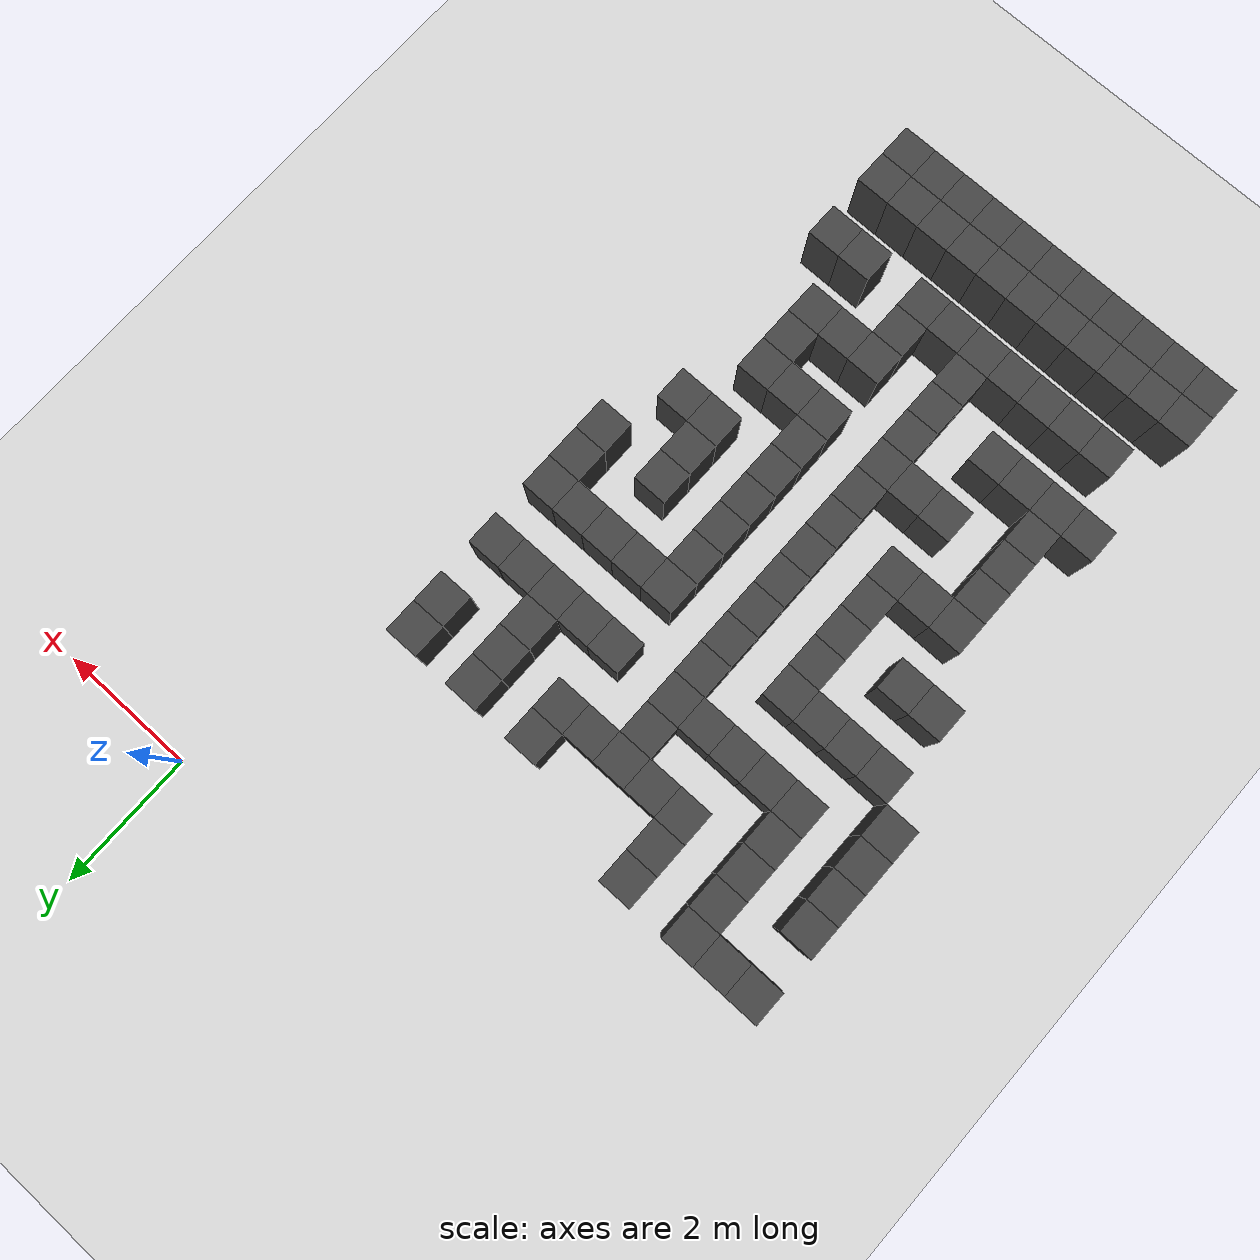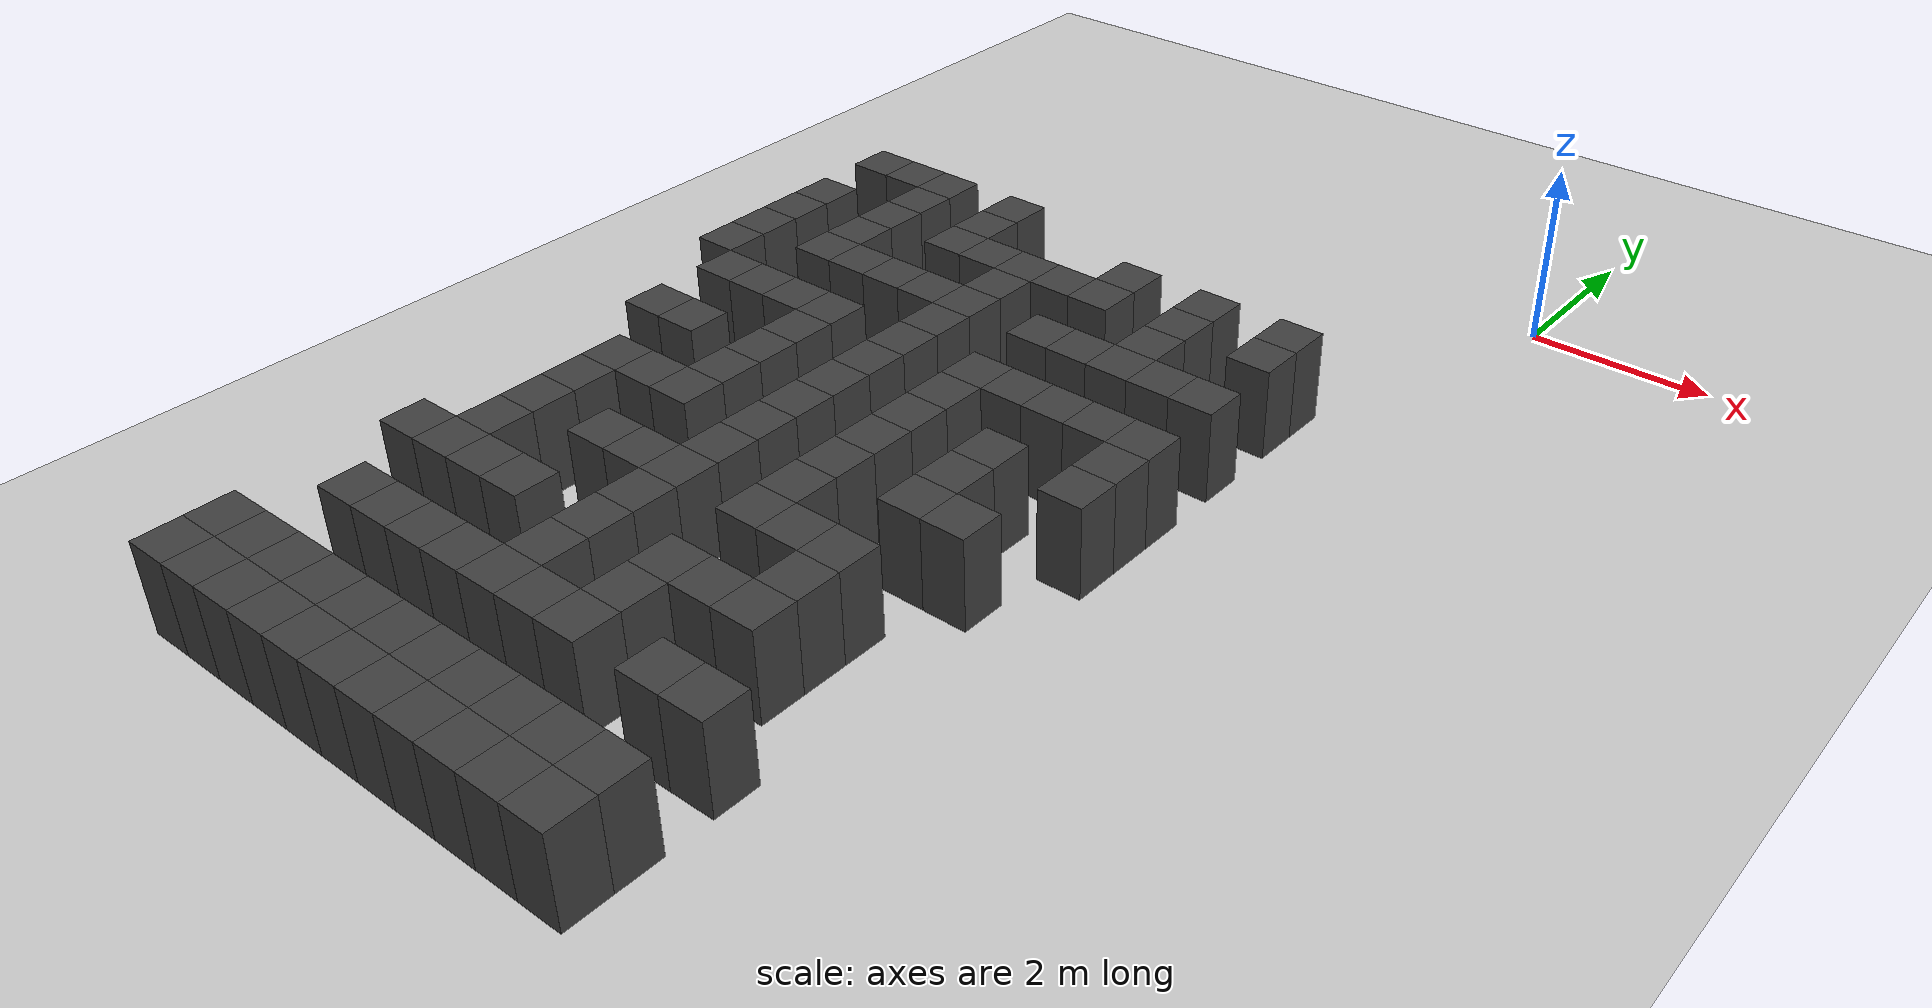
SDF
<sdf version="1.7">
 <world name="map_19815">
  <model name="ground_plane">
   <static>true</static>
   <link name="link">
    <collision name="collision">
     <geometry><plane><normal>0 0 1</normal><size>200 200</size></plane></geometry>
    </collision>
    <visual name="visual">
     <geometry><plane><normal>0 0 1</normal><size>200 200</size></plane></geometry>
     <material><ambient>0.8 0.8 0.8 1</ambient><diffuse>0.8 0.8 0.8 1</diffuse></material>
    </visual>
   </link>
  </model>
  <model name="maze_environment">
   <static>true</static>
   <link name="wall_788">
    <pose>-7.250 -2.750 0.500 0 0 0</pose>
    <collision name="col"><geometry><box><size>0.5 0.5 1.0</size></box></geometry></collision>
    <visual name="vis">
     <geometry><box><size>0.5 0.5 1.0</size></box></geometry>
     <material><ambient>0.15 0.15 0.15 1</ambient><diffuse>0.25 0.25 0.25 1</diffuse></material>
    </visual>
   </link>
   <link name="wall_789">
    <pose>-6.750 -2.750 0.500 0 0 0</pose>
    <collision name="col"><geometry><box><size>0.5 0.5 1.0</size></box></geometry></collision>
    <visual name="vis">
     <geometry><box><size>0.5 0.5 1.0</size></box></geometry>
     <material><ambient>0.15 0.15 0.15 1</ambient><diffuse>0.25 0.25 0.25 1</diffuse></material>
    </visual>
   </link>
   <link name="wall_790">
    <pose>-6.250 -2.750 0.500 0 0 0</pose>
    <collision name="col"><geometry><box><size>0.5 0.5 1.0</size></box></geometry></collision>
    <visual name="vis">
     <geometry><box><size>0.5 0.5 1.0</size></box></geometry>
     <material><ambient>0.15 0.15 0.15 1</ambient><diffuse>0.25 0.25 0.25 1</diffuse></material>
    </visual>
   </link>
   <link name="wall_791">
    <pose>-5.250 -2.750 0.500 0 0 0</pose>
    <collision name="col"><geometry><box><size>0.5 0.5 1.0</size></box></geometry></collision>
    <visual name="vis">
     <geometry><box><size>0.5 0.5 1.0</size></box></geometry>
     <material><ambient>0.15 0.15 0.15 1</ambient><diffuse>0.25 0.25 0.25 1</diffuse></material>
    </visual>
   </link>
   <link name="wall_822">
    <pose>-6.250 -3.250 0.500 0 0 0</pose>
    <collision name="col"><geometry><box><size>0.5 0.5 1.0</size></box></geometry></collision>
    <visual name="vis">
     <geometry><box><size>0.5 0.5 1.0</size></box></geometry>
     <material><ambient>0.15 0.15 0.15 1</ambient><diffuse>0.25 0.25 0.25 1</diffuse></material>
    </visual>
   </link>
   <link name="wall_823">
    <pose>-5.250 -3.250 0.500 0 0 0</pose>
    <collision name="col"><geometry><box><size>0.5 0.5 1.0</size></box></geometry></collision>
    <visual name="vis">
     <geometry><box><size>0.5 0.5 1.0</size></box></geometry>
     <material><ambient>0.15 0.15 0.15 1</ambient><diffuse>0.25 0.25 0.25 1</diffuse></material>
    </visual>
   </link>
   <link name="wall_824">
    <pose>-3.250 -3.250 0.500 0 0 0</pose>
    <collision name="col"><geometry><box><size>0.5 0.5 1.0</size></box></geometry></collision>
    <visual name="vis">
     <geometry><box><size>0.5 0.5 1.0</size></box></geometry>
     <material><ambient>0.15 0.15 0.15 1</ambient><diffuse>0.25 0.25 0.25 1</diffuse></material>
    </visual>
   </link>
   <link name="wall_825">
    <pose>-2.250 -3.250 0.500 0 0 0</pose>
    <collision name="col"><geometry><box><size>0.5 0.5 1.0</size></box></geometry></collision>
    <visual name="vis">
     <geometry><box><size>0.5 0.5 1.0</size></box></geometry>
     <material><ambient>0.15 0.15 0.15 1</ambient><diffuse>0.25 0.25 0.25 1</diffuse></material>
    </visual>
   </link>
   <link name="wall_826">
    <pose>-1.250 -3.250 0.500 0 0 0</pose>
    <collision name="col"><geometry><box><size>0.5 0.5 1.0</size></box></geometry></collision>
    <visual name="vis">
     <geometry><box><size>0.5 0.5 1.0</size></box></geometry>
     <material><ambient>0.15 0.15 0.15 1</ambient><diffuse>0.25 0.25 0.25 1</diffuse></material>
    </visual>
   </link>
   <link name="wall_843">
    <pose>-7.250 -3.750 0.500 0 0 0</pose>
    <collision name="col"><geometry><box><size>0.5 0.5 1.0</size></box></geometry></collision>
    <visual name="vis">
     <geometry><box><size>0.5 0.5 1.0</size></box></geometry>
     <material><ambient>0.15 0.15 0.15 1</ambient><diffuse>0.25 0.25 0.25 1</diffuse></material>
    </visual>
   </link>
   <link name="wall_844">
    <pose>-6.250 -3.750 0.500 0 0 0</pose>
    <collision name="col"><geometry><box><size>0.5 0.5 1.0</size></box></geometry></collision>
    <visual name="vis">
     <geometry><box><size>0.5 0.5 1.0</size></box></geometry>
     <material><ambient>0.15 0.15 0.15 1</ambient><diffuse>0.25 0.25 0.25 1</diffuse></material>
    </visual>
   </link>
   <link name="wall_845">
    <pose>-5.250 -3.750 0.500 0 0 0</pose>
    <collision name="col"><geometry><box><size>0.5 0.5 1.0</size></box></geometry></collision>
    <visual name="vis">
     <geometry><box><size>0.5 0.5 1.0</size></box></geometry>
     <material><ambient>0.15 0.15 0.15 1</ambient><diffuse>0.25 0.25 0.25 1</diffuse></material>
    </visual>
   </link>
   <link name="wall_846">
    <pose>-4.750 -3.750 0.500 0 0 0</pose>
    <collision name="col"><geometry><box><size>0.5 0.5 1.0</size></box></geometry></collision>
    <visual name="vis">
     <geometry><box><size>0.5 0.5 1.0</size></box></geometry>
     <material><ambient>0.15 0.15 0.15 1</ambient><diffuse>0.25 0.25 0.25 1</diffuse></material>
    </visual>
   </link>
   <link name="wall_847">
    <pose>-4.250 -3.750 0.500 0 0 0</pose>
    <collision name="col"><geometry><box><size>0.5 0.5 1.0</size></box></geometry></collision>
    <visual name="vis">
     <geometry><box><size>0.5 0.5 1.0</size></box></geometry>
     <material><ambient>0.15 0.15 0.15 1</ambient><diffuse>0.25 0.25 0.25 1</diffuse></material>
    </visual>
   </link>
   <link name="wall_848">
    <pose>-3.750 -3.750 0.500 0 0 0</pose>
    <collision name="col"><geometry><box><size>0.5 0.5 1.0</size></box></geometry></collision>
    <visual name="vis">
     <geometry><box><size>0.5 0.5 1.0</size></box></geometry>
     <material><ambient>0.15 0.15 0.15 1</ambient><diffuse>0.25 0.25 0.25 1</diffuse></material>
    </visual>
   </link>
   <link name="wall_849">
    <pose>-3.250 -3.750 0.500 0 0 0</pose>
    <collision name="col"><geometry><box><size>0.5 0.5 1.0</size></box></geometry></collision>
    <visual name="vis">
     <geometry><box><size>0.5 0.5 1.0</size></box></geometry>
     <material><ambient>0.15 0.15 0.15 1</ambient><diffuse>0.25 0.25 0.25 1</diffuse></material>
    </visual>
   </link>
   <link name="wall_850">
    <pose>-2.250 -3.750 0.500 0 0 0</pose>
    <collision name="col"><geometry><box><size>0.5 0.5 1.0</size></box></geometry></collision>
    <visual name="vis">
     <geometry><box><size>0.5 0.5 1.0</size></box></geometry>
     <material><ambient>0.15 0.15 0.15 1</ambient><diffuse>0.25 0.25 0.25 1</diffuse></material>
    </visual>
   </link>
   <link name="wall_851">
    <pose>-1.250 -3.750 0.500 0 0 0</pose>
    <collision name="col"><geometry><box><size>0.5 0.5 1.0</size></box></geometry></collision>
    <visual name="vis">
     <geometry><box><size>0.5 0.5 1.0</size></box></geometry>
     <material><ambient>0.15 0.15 0.15 1</ambient><diffuse>0.25 0.25 0.25 1</diffuse></material>
    </visual>
   </link>
   <link name="wall_874">
    <pose>-7.250 -4.250 0.500 0 0 0</pose>
    <collision name="col"><geometry><box><size>0.5 0.5 1.0</size></box></geometry></collision>
    <visual name="vis">
     <geometry><box><size>0.5 0.5 1.0</size></box></geometry>
     <material><ambient>0.15 0.15 0.15 1</ambient><diffuse>0.25 0.25 0.25 1</diffuse></material>
    </visual>
   </link>
   <link name="wall_875">
    <pose>-6.250 -4.250 0.500 0 0 0</pose>
    <collision name="col"><geometry><box><size>0.5 0.5 1.0</size></box></geometry></collision>
    <visual name="vis">
     <geometry><box><size>0.5 0.5 1.0</size></box></geometry>
     <material><ambient>0.15 0.15 0.15 1</ambient><diffuse>0.25 0.25 0.25 1</diffuse></material>
    </visual>
   </link>
   <link name="wall_876">
    <pose>-4.250 -4.250 0.500 0 0 0</pose>
    <collision name="col"><geometry><box><size>0.5 0.5 1.0</size></box></geometry></collision>
    <visual name="vis">
     <geometry><box><size>0.5 0.5 1.0</size></box></geometry>
     <material><ambient>0.15 0.15 0.15 1</ambient><diffuse>0.25 0.25 0.25 1</diffuse></material>
    </visual>
   </link>
   <link name="wall_877">
    <pose>-2.250 -4.250 0.500 0 0 0</pose>
    <collision name="col"><geometry><box><size>0.5 0.5 1.0</size></box></geometry></collision>
    <visual name="vis">
     <geometry><box><size>0.5 0.5 1.0</size></box></geometry>
     <material><ambient>0.15 0.15 0.15 1</ambient><diffuse>0.25 0.25 0.25 1</diffuse></material>
    </visual>
   </link>
   <link name="wall_892">
    <pose>-7.250 -4.750 0.500 0 0 0</pose>
    <collision name="col"><geometry><box><size>0.5 0.5 1.0</size></box></geometry></collision>
    <visual name="vis">
     <geometry><box><size>0.5 0.5 1.0</size></box></geometry>
     <material><ambient>0.15 0.15 0.15 1</ambient><diffuse>0.25 0.25 0.25 1</diffuse></material>
    </visual>
   </link>
   <link name="wall_893">
    <pose>-6.250 -4.750 0.500 0 0 0</pose>
    <collision name="col"><geometry><box><size>0.5 0.5 1.0</size></box></geometry></collision>
    <visual name="vis">
     <geometry><box><size>0.5 0.5 1.0</size></box></geometry>
     <material><ambient>0.15 0.15 0.15 1</ambient><diffuse>0.25 0.25 0.25 1</diffuse></material>
    </visual>
   </link>
   <link name="wall_894">
    <pose>-5.750 -4.750 0.500 0 0 0</pose>
    <collision name="col"><geometry><box><size>0.5 0.5 1.0</size></box></geometry></collision>
    <visual name="vis">
     <geometry><box><size>0.5 0.5 1.0</size></box></geometry>
     <material><ambient>0.15 0.15 0.15 1</ambient><diffuse>0.25 0.25 0.25 1</diffuse></material>
    </visual>
   </link>
   <link name="wall_895">
    <pose>-5.250 -4.750 0.500 0 0 0</pose>
    <collision name="col"><geometry><box><size>0.5 0.5 1.0</size></box></geometry></collision>
    <visual name="vis">
     <geometry><box><size>0.5 0.5 1.0</size></box></geometry>
     <material><ambient>0.15 0.15 0.15 1</ambient><diffuse>0.25 0.25 0.25 1</diffuse></material>
    </visual>
   </link>
   <link name="wall_896">
    <pose>-4.750 -4.750 0.500 0 0 0</pose>
    <collision name="col"><geometry><box><size>0.5 0.5 1.0</size></box></geometry></collision>
    <visual name="vis">
     <geometry><box><size>0.5 0.5 1.0</size></box></geometry>
     <material><ambient>0.15 0.15 0.15 1</ambient><diffuse>0.25 0.25 0.25 1</diffuse></material>
    </visual>
   </link>
   <link name="wall_897">
    <pose>-4.250 -4.750 0.500 0 0 0</pose>
    <collision name="col"><geometry><box><size>0.5 0.5 1.0</size></box></geometry></collision>
    <visual name="vis">
     <geometry><box><size>0.5 0.5 1.0</size></box></geometry>
     <material><ambient>0.15 0.15 0.15 1</ambient><diffuse>0.25 0.25 0.25 1</diffuse></material>
    </visual>
   </link>
   <link name="wall_898">
    <pose>-3.250 -4.750 0.500 0 0 0</pose>
    <collision name="col"><geometry><box><size>0.5 0.5 1.0</size></box></geometry></collision>
    <visual name="vis">
     <geometry><box><size>0.5 0.5 1.0</size></box></geometry>
     <material><ambient>0.15 0.15 0.15 1</ambient><diffuse>0.25 0.25 0.25 1</diffuse></material>
    </visual>
   </link>
   <link name="wall_899">
    <pose>-2.750 -4.750 0.500 0 0 0</pose>
    <collision name="col"><geometry><box><size>0.5 0.5 1.0</size></box></geometry></collision>
    <visual name="vis">
     <geometry><box><size>0.5 0.5 1.0</size></box></geometry>
     <material><ambient>0.15 0.15 0.15 1</ambient><diffuse>0.25 0.25 0.25 1</diffuse></material>
    </visual>
   </link>
   <link name="wall_900">
    <pose>-2.250 -4.750 0.500 0 0 0</pose>
    <collision name="col"><geometry><box><size>0.5 0.5 1.0</size></box></geometry></collision>
    <visual name="vis">
     <geometry><box><size>0.5 0.5 1.0</size></box></geometry>
     <material><ambient>0.15 0.15 0.15 1</ambient><diffuse>0.25 0.25 0.25 1</diffuse></material>
    </visual>
   </link>
   <link name="wall_901">
    <pose>-1.750 -4.750 0.500 0 0 0</pose>
    <collision name="col"><geometry><box><size>0.5 0.5 1.0</size></box></geometry></collision>
    <visual name="vis">
     <geometry><box><size>0.5 0.5 1.0</size></box></geometry>
     <material><ambient>0.15 0.15 0.15 1</ambient><diffuse>0.25 0.25 0.25 1</diffuse></material>
    </visual>
   </link>
   <link name="wall_902">
    <pose>-1.250 -4.750 0.500 0 0 0</pose>
    <collision name="col"><geometry><box><size>0.5 0.5 1.0</size></box></geometry></collision>
    <visual name="vis">
     <geometry><box><size>0.5 0.5 1.0</size></box></geometry>
     <material><ambient>0.15 0.15 0.15 1</ambient><diffuse>0.25 0.25 0.25 1</diffuse></material>
    </visual>
   </link>
   <link name="wall_927">
    <pose>-7.250 -5.250 0.500 0 0 0</pose>
    <collision name="col"><geometry><box><size>0.5 0.5 1.0</size></box></geometry></collision>
    <visual name="vis">
     <geometry><box><size>0.5 0.5 1.0</size></box></geometry>
     <material><ambient>0.15 0.15 0.15 1</ambient><diffuse>0.25 0.25 0.25 1</diffuse></material>
    </visual>
   </link>
   <link name="wall_928">
    <pose>-4.250 -5.250 0.500 0 0 0</pose>
    <collision name="col"><geometry><box><size>0.5 0.5 1.0</size></box></geometry></collision>
    <visual name="vis">
     <geometry><box><size>0.5 0.5 1.0</size></box></geometry>
     <material><ambient>0.15 0.15 0.15 1</ambient><diffuse>0.25 0.25 0.25 1</diffuse></material>
    </visual>
   </link>
   <link name="wall_944">
    <pose>-6.750 -5.750 0.500 0 0 0</pose>
    <collision name="col"><geometry><box><size>0.5 0.5 1.0</size></box></geometry></collision>
    <visual name="vis">
     <geometry><box><size>0.5 0.5 1.0</size></box></geometry>
     <material><ambient>0.15 0.15 0.15 1</ambient><diffuse>0.25 0.25 0.25 1</diffuse></material>
    </visual>
   </link>
   <link name="wall_945">
    <pose>-6.250 -5.750 0.500 0 0 0</pose>
    <collision name="col"><geometry><box><size>0.5 0.5 1.0</size></box></geometry></collision>
    <visual name="vis">
     <geometry><box><size>0.5 0.5 1.0</size></box></geometry>
     <material><ambient>0.15 0.15 0.15 1</ambient><diffuse>0.25 0.25 0.25 1</diffuse></material>
    </visual>
   </link>
   <link name="wall_946">
    <pose>-5.750 -5.750 0.500 0 0 0</pose>
    <collision name="col"><geometry><box><size>0.5 0.5 1.0</size></box></geometry></collision>
    <visual name="vis">
     <geometry><box><size>0.5 0.5 1.0</size></box></geometry>
     <material><ambient>0.15 0.15 0.15 1</ambient><diffuse>0.25 0.25 0.25 1</diffuse></material>
    </visual>
   </link>
   <link name="wall_947">
    <pose>-5.250 -5.750 0.500 0 0 0</pose>
    <collision name="col"><geometry><box><size>0.5 0.5 1.0</size></box></geometry></collision>
    <visual name="vis">
     <geometry><box><size>0.5 0.5 1.0</size></box></geometry>
     <material><ambient>0.15 0.15 0.15 1</ambient><diffuse>0.25 0.25 0.25 1</diffuse></material>
    </visual>
   </link>
   <link name="wall_948">
    <pose>-4.250 -5.750 0.500 0 0 0</pose>
    <collision name="col"><geometry><box><size>0.5 0.5 1.0</size></box></geometry></collision>
    <visual name="vis">
     <geometry><box><size>0.5 0.5 1.0</size></box></geometry>
     <material><ambient>0.15 0.15 0.15 1</ambient><diffuse>0.25 0.25 0.25 1</diffuse></material>
    </visual>
   </link>
   <link name="wall_949">
    <pose>-3.250 -5.750 0.500 0 0 0</pose>
    <collision name="col"><geometry><box><size>0.5 0.5 1.0</size></box></geometry></collision>
    <visual name="vis">
     <geometry><box><size>0.5 0.5 1.0</size></box></geometry>
     <material><ambient>0.15 0.15 0.15 1</ambient><diffuse>0.25 0.25 0.25 1</diffuse></material>
    </visual>
   </link>
   <link name="wall_950">
    <pose>-2.750 -5.750 0.500 0 0 0</pose>
    <collision name="col"><geometry><box><size>0.5 0.5 1.0</size></box></geometry></collision>
    <visual name="vis">
     <geometry><box><size>0.5 0.5 1.0</size></box></geometry>
     <material><ambient>0.15 0.15 0.15 1</ambient><diffuse>0.25 0.25 0.25 1</diffuse></material>
    </visual>
   </link>
   <link name="wall_951">
    <pose>-2.250 -5.750 0.500 0 0 0</pose>
    <collision name="col"><geometry><box><size>0.5 0.5 1.0</size></box></geometry></collision>
    <visual name="vis">
     <geometry><box><size>0.5 0.5 1.0</size></box></geometry>
     <material><ambient>0.15 0.15 0.15 1</ambient><diffuse>0.25 0.25 0.25 1</diffuse></material>
    </visual>
   </link>
   <link name="wall_952">
    <pose>-1.750 -5.750 0.500 0 0 0</pose>
    <collision name="col"><geometry><box><size>0.5 0.5 1.0</size></box></geometry></collision>
    <visual name="vis">
     <geometry><box><size>0.5 0.5 1.0</size></box></geometry>
     <material><ambient>0.15 0.15 0.15 1</ambient><diffuse>0.25 0.25 0.25 1</diffuse></material>
    </visual>
   </link>
   <link name="wall_953">
    <pose>-1.250 -5.750 0.500 0 0 0</pose>
    <collision name="col"><geometry><box><size>0.5 0.5 1.0</size></box></geometry></collision>
    <visual name="vis">
     <geometry><box><size>0.5 0.5 1.0</size></box></geometry>
     <material><ambient>0.15 0.15 0.15 1</ambient><diffuse>0.25 0.25 0.25 1</diffuse></material>
    </visual>
   </link>
   <link name="wall_976">
    <pose>-5.250 -6.250 0.500 0 0 0</pose>
    <collision name="col"><geometry><box><size>0.5 0.5 1.0</size></box></geometry></collision>
    <visual name="vis">
     <geometry><box><size>0.5 0.5 1.0</size></box></geometry>
     <material><ambient>0.15 0.15 0.15 1</ambient><diffuse>0.25 0.25 0.25 1</diffuse></material>
    </visual>
   </link>
   <link name="wall_977">
    <pose>-4.250 -6.250 0.500 0 0 0</pose>
    <collision name="col"><geometry><box><size>0.5 0.5 1.0</size></box></geometry></collision>
    <visual name="vis">
     <geometry><box><size>0.5 0.5 1.0</size></box></geometry>
     <material><ambient>0.15 0.15 0.15 1</ambient><diffuse>0.25 0.25 0.25 1</diffuse></material>
    </visual>
   </link>
   <link name="wall_978">
    <pose>-3.250 -6.250 0.500 0 0 0</pose>
    <collision name="col"><geometry><box><size>0.5 0.5 1.0</size></box></geometry></collision>
    <visual name="vis">
     <geometry><box><size>0.5 0.5 1.0</size></box></geometry>
     <material><ambient>0.15 0.15 0.15 1</ambient><diffuse>0.25 0.25 0.25 1</diffuse></material>
    </visual>
   </link>
   <link name="wall_979">
    <pose>-1.250 -6.250 0.500 0 0 0</pose>
    <collision name="col"><geometry><box><size>0.5 0.5 1.0</size></box></geometry></collision>
    <visual name="vis">
     <geometry><box><size>0.5 0.5 1.0</size></box></geometry>
     <material><ambient>0.15 0.15 0.15 1</ambient><diffuse>0.25 0.25 0.25 1</diffuse></material>
    </visual>
   </link>
   <link name="wall_999">
    <pose>-6.750 -6.750 0.500 0 0 0</pose>
    <collision name="col"><geometry><box><size>0.5 0.5 1.0</size></box></geometry></collision>
    <visual name="vis">
     <geometry><box><size>0.5 0.5 1.0</size></box></geometry>
     <material><ambient>0.15 0.15 0.15 1</ambient><diffuse>0.25 0.25 0.25 1</diffuse></material>
    </visual>
   </link>
   <link name="wall_1000">
    <pose>-6.250 -6.750 0.500 0 0 0</pose>
    <collision name="col"><geometry><box><size>0.5 0.5 1.0</size></box></geometry></collision>
    <visual name="vis">
     <geometry><box><size>0.5 0.5 1.0</size></box></geometry>
     <material><ambient>0.15 0.15 0.15 1</ambient><diffuse>0.25 0.25 0.25 1</diffuse></material>
    </visual>
   </link>
   <link name="wall_1001">
    <pose>-5.250 -6.750 0.500 0 0 0</pose>
    <collision name="col"><geometry><box><size>0.5 0.5 1.0</size></box></geometry></collision>
    <visual name="vis">
     <geometry><box><size>0.5 0.5 1.0</size></box></geometry>
     <material><ambient>0.15 0.15 0.15 1</ambient><diffuse>0.25 0.25 0.25 1</diffuse></material>
    </visual>
   </link>
   <link name="wall_1002">
    <pose>-4.250 -6.750 0.500 0 0 0</pose>
    <collision name="col"><geometry><box><size>0.5 0.5 1.0</size></box></geometry></collision>
    <visual name="vis">
     <geometry><box><size>0.5 0.5 1.0</size></box></geometry>
     <material><ambient>0.15 0.15 0.15 1</ambient><diffuse>0.25 0.25 0.25 1</diffuse></material>
    </visual>
   </link>
   <link name="wall_1003">
    <pose>-3.250 -6.750 0.500 0 0 0</pose>
    <collision name="col"><geometry><box><size>0.5 0.5 1.0</size></box></geometry></collision>
    <visual name="vis">
     <geometry><box><size>0.5 0.5 1.0</size></box></geometry>
     <material><ambient>0.15 0.15 0.15 1</ambient><diffuse>0.25 0.25 0.25 1</diffuse></material>
    </visual>
   </link>
   <link name="wall_1004">
    <pose>-2.250 -6.750 0.500 0 0 0</pose>
    <collision name="col"><geometry><box><size>0.5 0.5 1.0</size></box></geometry></collision>
    <visual name="vis">
     <geometry><box><size>0.5 0.5 1.0</size></box></geometry>
     <material><ambient>0.15 0.15 0.15 1</ambient><diffuse>0.25 0.25 0.25 1</diffuse></material>
    </visual>
   </link>
   <link name="wall_1005">
    <pose>-1.250 -6.750 0.500 0 0 0</pose>
    <collision name="col"><geometry><box><size>0.5 0.5 1.0</size></box></geometry></collision>
    <visual name="vis">
     <geometry><box><size>0.5 0.5 1.0</size></box></geometry>
     <material><ambient>0.15 0.15 0.15 1</ambient><diffuse>0.25 0.25 0.25 1</diffuse></material>
    </visual>
   </link>
   <link name="wall_1026">
    <pose>-5.250 -7.250 0.500 0 0 0</pose>
    <collision name="col"><geometry><box><size>0.5 0.5 1.0</size></box></geometry></collision>
    <visual name="vis">
     <geometry><box><size>0.5 0.5 1.0</size></box></geometry>
     <material><ambient>0.15 0.15 0.15 1</ambient><diffuse>0.25 0.25 0.25 1</diffuse></material>
    </visual>
   </link>
   <link name="wall_1027">
    <pose>-4.250 -7.250 0.500 0 0 0</pose>
    <collision name="col"><geometry><box><size>0.5 0.5 1.0</size></box></geometry></collision>
    <visual name="vis">
     <geometry><box><size>0.5 0.5 1.0</size></box></geometry>
     <material><ambient>0.15 0.15 0.15 1</ambient><diffuse>0.25 0.25 0.25 1</diffuse></material>
    </visual>
   </link>
   <link name="wall_1028">
    <pose>-3.250 -7.250 0.500 0 0 0</pose>
    <collision name="col"><geometry><box><size>0.5 0.5 1.0</size></box></geometry></collision>
    <visual name="vis">
     <geometry><box><size>0.5 0.5 1.0</size></box></geometry>
     <material><ambient>0.15 0.15 0.15 1</ambient><diffuse>0.25 0.25 0.25 1</diffuse></material>
    </visual>
   </link>
   <link name="wall_1029">
    <pose>-2.250 -7.250 0.500 0 0 0</pose>
    <collision name="col"><geometry><box><size>0.5 0.5 1.0</size></box></geometry></collision>
    <visual name="vis">
     <geometry><box><size>0.5 0.5 1.0</size></box></geometry>
     <material><ambient>0.15 0.15 0.15 1</ambient><diffuse>0.25 0.25 0.25 1</diffuse></material>
    </visual>
   </link>
   <link name="wall_1048">
    <pose>-6.250 -7.750 0.500 0 0 0</pose>
    <collision name="col"><geometry><box><size>0.5 0.5 1.0</size></box></geometry></collision>
    <visual name="vis">
     <geometry><box><size>0.5 0.5 1.0</size></box></geometry>
     <material><ambient>0.15 0.15 0.15 1</ambient><diffuse>0.25 0.25 0.25 1</diffuse></material>
    </visual>
   </link>
   <link name="wall_1049">
    <pose>-5.750 -7.750 0.500 0 0 0</pose>
    <collision name="col"><geometry><box><size>0.5 0.5 1.0</size></box></geometry></collision>
    <visual name="vis">
     <geometry><box><size>0.5 0.5 1.0</size></box></geometry>
     <material><ambient>0.15 0.15 0.15 1</ambient><diffuse>0.25 0.25 0.25 1</diffuse></material>
    </visual>
   </link>
   <link name="wall_1050">
    <pose>-5.250 -7.750 0.500 0 0 0</pose>
    <collision name="col"><geometry><box><size>0.5 0.5 1.0</size></box></geometry></collision>
    <visual name="vis">
     <geometry><box><size>0.5 0.5 1.0</size></box></geometry>
     <material><ambient>0.15 0.15 0.15 1</ambient><diffuse>0.25 0.25 0.25 1</diffuse></material>
    </visual>
   </link>
   <link name="wall_1051">
    <pose>-4.250 -7.750 0.500 0 0 0</pose>
    <collision name="col"><geometry><box><size>0.5 0.5 1.0</size></box></geometry></collision>
    <visual name="vis">
     <geometry><box><size>0.5 0.5 1.0</size></box></geometry>
     <material><ambient>0.15 0.15 0.15 1</ambient><diffuse>0.25 0.25 0.25 1</diffuse></material>
    </visual>
   </link>
   <link name="wall_1052">
    <pose>-3.250 -7.750 0.500 0 0 0</pose>
    <collision name="col"><geometry><box><size>0.5 0.5 1.0</size></box></geometry></collision>
    <visual name="vis">
     <geometry><box><size>0.5 0.5 1.0</size></box></geometry>
     <material><ambient>0.15 0.15 0.15 1</ambient><diffuse>0.25 0.25 0.25 1</diffuse></material>
    </visual>
   </link>
   <link name="wall_1053">
    <pose>-2.250 -7.750 0.500 0 0 0</pose>
    <collision name="col"><geometry><box><size>0.5 0.5 1.0</size></box></geometry></collision>
    <visual name="vis">
     <geometry><box><size>0.5 0.5 1.0</size></box></geometry>
     <material><ambient>0.15 0.15 0.15 1</ambient><diffuse>0.25 0.25 0.25 1</diffuse></material>
    </visual>
   </link>
   <link name="wall_1054">
    <pose>-1.750 -7.750 0.500 0 0 0</pose>
    <collision name="col"><geometry><box><size>0.5 0.5 1.0</size></box></geometry></collision>
    <visual name="vis">
     <geometry><box><size>0.5 0.5 1.0</size></box></geometry>
     <material><ambient>0.15 0.15 0.15 1</ambient><diffuse>0.25 0.25 0.25 1</diffuse></material>
    </visual>
   </link>
   <link name="wall_1080">
    <pose>-6.250 -8.250 0.500 0 0 0</pose>
    <collision name="col"><geometry><box><size>0.5 0.5 1.0</size></box></geometry></collision>
    <visual name="vis">
     <geometry><box><size>0.5 0.5 1.0</size></box></geometry>
     <material><ambient>0.15 0.15 0.15 1</ambient><diffuse>0.25 0.25 0.25 1</diffuse></material>
    </visual>
   </link>
   <link name="wall_1081">
    <pose>-4.250 -8.250 0.500 0 0 0</pose>
    <collision name="col"><geometry><box><size>0.5 0.5 1.0</size></box></geometry></collision>
    <visual name="vis">
     <geometry><box><size>0.5 0.5 1.0</size></box></geometry>
     <material><ambient>0.15 0.15 0.15 1</ambient><diffuse>0.25 0.25 0.25 1</diffuse></material>
    </visual>
   </link>
   <link name="wall_1082">
    <pose>-3.250 -8.250 0.500 0 0 0</pose>
    <collision name="col"><geometry><box><size>0.5 0.5 1.0</size></box></geometry></collision>
    <visual name="vis">
     <geometry><box><size>0.5 0.5 1.0</size></box></geometry>
     <material><ambient>0.15 0.15 0.15 1</ambient><diffuse>0.25 0.25 0.25 1</diffuse></material>
    </visual>
   </link>
   <link name="wall_1100">
    <pose>-6.250 -8.750 0.500 0 0 0</pose>
    <collision name="col"><geometry><box><size>0.5 0.5 1.0</size></box></geometry></collision>
    <visual name="vis">
     <geometry><box><size>0.5 0.5 1.0</size></box></geometry>
     <material><ambient>0.15 0.15 0.15 1</ambient><diffuse>0.25 0.25 0.25 1</diffuse></material>
    </visual>
   </link>
   <link name="wall_1101">
    <pose>-5.250 -8.750 0.500 0 0 0</pose>
    <collision name="col"><geometry><box><size>0.5 0.5 1.0</size></box></geometry></collision>
    <visual name="vis">
     <geometry><box><size>0.5 0.5 1.0</size></box></geometry>
     <material><ambient>0.15 0.15 0.15 1</ambient><diffuse>0.25 0.25 0.25 1</diffuse></material>
    </visual>
   </link>
   <link name="wall_1102">
    <pose>-4.750 -8.750 0.500 0 0 0</pose>
    <collision name="col"><geometry><box><size>0.5 0.5 1.0</size></box></geometry></collision>
    <visual name="vis">
     <geometry><box><size>0.5 0.5 1.0</size></box></geometry>
     <material><ambient>0.15 0.15 0.15 1</ambient><diffuse>0.25 0.25 0.25 1</diffuse></material>
    </visual>
   </link>
   <link name="wall_1103">
    <pose>-4.250 -8.750 0.500 0 0 0</pose>
    <collision name="col"><geometry><box><size>0.5 0.5 1.0</size></box></geometry></collision>
    <visual name="vis">
     <geometry><box><size>0.5 0.5 1.0</size></box></geometry>
     <material><ambient>0.15 0.15 0.15 1</ambient><diffuse>0.25 0.25 0.25 1</diffuse></material>
    </visual>
   </link>
   <link name="wall_1104">
    <pose>-3.250 -8.750 0.500 0 0 0</pose>
    <collision name="col"><geometry><box><size>0.5 0.5 1.0</size></box></geometry></collision>
    <visual name="vis">
     <geometry><box><size>0.5 0.5 1.0</size></box></geometry>
     <material><ambient>0.15 0.15 0.15 1</ambient><diffuse>0.25 0.25 0.25 1</diffuse></material>
    </visual>
   </link>
   <link name="wall_1105">
    <pose>-2.750 -8.750 0.500 0 0 0</pose>
    <collision name="col"><geometry><box><size>0.5 0.5 1.0</size></box></geometry></collision>
    <visual name="vis">
     <geometry><box><size>0.5 0.5 1.0</size></box></geometry>
     <material><ambient>0.15 0.15 0.15 1</ambient><diffuse>0.25 0.25 0.25 1</diffuse></material>
    </visual>
   </link>
   <link name="wall_1106">
    <pose>-2.250 -8.750 0.500 0 0 0</pose>
    <collision name="col"><geometry><box><size>0.5 0.5 1.0</size></box></geometry></collision>
    <visual name="vis">
     <geometry><box><size>0.5 0.5 1.0</size></box></geometry>
     <material><ambient>0.15 0.15 0.15 1</ambient><diffuse>0.25 0.25 0.25 1</diffuse></material>
    </visual>
   </link>
   <link name="wall_1129">
    <pose>-6.250 -9.250 0.500 0 0 0</pose>
    <collision name="col"><geometry><box><size>0.5 0.5 1.0</size></box></geometry></collision>
    <visual name="vis">
     <geometry><box><size>0.5 0.5 1.0</size></box></geometry>
     <material><ambient>0.15 0.15 0.15 1</ambient><diffuse>0.25 0.25 0.25 1</diffuse></material>
    </visual>
   </link>
   <link name="wall_1130">
    <pose>-4.250 -9.250 0.500 0 0 0</pose>
    <collision name="col"><geometry><box><size>0.5 0.5 1.0</size></box></geometry></collision>
    <visual name="vis">
     <geometry><box><size>0.5 0.5 1.0</size></box></geometry>
     <material><ambient>0.15 0.15 0.15 1</ambient><diffuse>0.25 0.25 0.25 1</diffuse></material>
    </visual>
   </link>
   <link name="wall_1131">
    <pose>-2.250 -9.250 0.500 0 0 0</pose>
    <collision name="col"><geometry><box><size>0.5 0.5 1.0</size></box></geometry></collision>
    <visual name="vis">
     <geometry><box><size>0.5 0.5 1.0</size></box></geometry>
     <material><ambient>0.15 0.15 0.15 1</ambient><diffuse>0.25 0.25 0.25 1</diffuse></material>
    </visual>
   </link>
   <link name="wall_1149">
    <pose>-6.750 -9.750 0.500 0 0 0</pose>
    <collision name="col"><geometry><box><size>0.5 0.5 1.0</size></box></geometry></collision>
    <visual name="vis">
     <geometry><box><size>0.5 0.5 1.0</size></box></geometry>
     <material><ambient>0.15 0.15 0.15 1</ambient><diffuse>0.25 0.25 0.25 1</diffuse></material>
    </visual>
   </link>
   <link name="wall_1150">
    <pose>-6.250 -9.750 0.500 0 0 0</pose>
    <collision name="col"><geometry><box><size>0.5 0.5 1.0</size></box></geometry></collision>
    <visual name="vis">
     <geometry><box><size>0.5 0.5 1.0</size></box></geometry>
     <material><ambient>0.15 0.15 0.15 1</ambient><diffuse>0.25 0.25 0.25 1</diffuse></material>
    </visual>
   </link>
   <link name="wall_1151">
    <pose>-5.750 -9.750 0.500 0 0 0</pose>
    <collision name="col"><geometry><box><size>0.5 0.5 1.0</size></box></geometry></collision>
    <visual name="vis">
     <geometry><box><size>0.5 0.5 1.0</size></box></geometry>
     <material><ambient>0.15 0.15 0.15 1</ambient><diffuse>0.25 0.25 0.25 1</diffuse></material>
    </visual>
   </link>
   <link name="wall_1152">
    <pose>-5.250 -9.750 0.500 0 0 0</pose>
    <collision name="col"><geometry><box><size>0.5 0.5 1.0</size></box></geometry></collision>
    <visual name="vis">
     <geometry><box><size>0.5 0.5 1.0</size></box></geometry>
     <material><ambient>0.15 0.15 0.15 1</ambient><diffuse>0.25 0.25 0.25 1</diffuse></material>
    </visual>
   </link>
   <link name="wall_1153">
    <pose>-4.250 -9.750 0.500 0 0 0</pose>
    <collision name="col"><geometry><box><size>0.5 0.5 1.0</size></box></geometry></collision>
    <visual name="vis">
     <geometry><box><size>0.5 0.5 1.0</size></box></geometry>
     <material><ambient>0.15 0.15 0.15 1</ambient><diffuse>0.25 0.25 0.25 1</diffuse></material>
    </visual>
   </link>
   <link name="wall_1154">
    <pose>-3.250 -9.750 0.500 0 0 0</pose>
    <collision name="col"><geometry><box><size>0.5 0.5 1.0</size></box></geometry></collision>
    <visual name="vis">
     <geometry><box><size>0.5 0.5 1.0</size></box></geometry>
     <material><ambient>0.15 0.15 0.15 1</ambient><diffuse>0.25 0.25 0.25 1</diffuse></material>
    </visual>
   </link>
   <link name="wall_1155">
    <pose>-2.750 -9.750 0.500 0 0 0</pose>
    <collision name="col"><geometry><box><size>0.5 0.5 1.0</size></box></geometry></collision>
    <visual name="vis">
     <geometry><box><size>0.5 0.5 1.0</size></box></geometry>
     <material><ambient>0.15 0.15 0.15 1</ambient><diffuse>0.25 0.25 0.25 1</diffuse></material>
    </visual>
   </link>
   <link name="wall_1156">
    <pose>-2.250 -9.750 0.500 0 0 0</pose>
    <collision name="col"><geometry><box><size>0.5 0.5 1.0</size></box></geometry></collision>
    <visual name="vis">
     <geometry><box><size>0.5 0.5 1.0</size></box></geometry>
     <material><ambient>0.15 0.15 0.15 1</ambient><diffuse>0.25 0.25 0.25 1</diffuse></material>
    </visual>
   </link>
   <link name="wall_1182">
    <pose>-4.250 -10.250 0.500 0 0 0</pose>
    <collision name="col"><geometry><box><size>0.5 0.5 1.0</size></box></geometry></collision>
    <visual name="vis">
     <geometry><box><size>0.5 0.5 1.0</size></box></geometry>
     <material><ambient>0.15 0.15 0.15 1</ambient><diffuse>0.25 0.25 0.25 1</diffuse></material>
    </visual>
   </link>
   <link name="wall_1183">
    <pose>-3.250 -10.250 0.500 0 0 0</pose>
    <collision name="col"><geometry><box><size>0.5 0.5 1.0</size></box></geometry></collision>
    <visual name="vis">
     <geometry><box><size>0.5 0.5 1.0</size></box></geometry>
     <material><ambient>0.15 0.15 0.15 1</ambient><diffuse>0.25 0.25 0.25 1</diffuse></material>
    </visual>
   </link>
   <link name="wall_1201">
    <pose>-6.250 -10.750 0.500 0 0 0</pose>
    <collision name="col"><geometry><box><size>0.5 0.5 1.0</size></box></geometry></collision>
    <visual name="vis">
     <geometry><box><size>0.5 0.5 1.0</size></box></geometry>
     <material><ambient>0.15 0.15 0.15 1</ambient><diffuse>0.25 0.25 0.25 1</diffuse></material>
    </visual>
   </link>
   <link name="wall_1202">
    <pose>-5.750 -10.750 0.500 0 0 0</pose>
    <collision name="col"><geometry><box><size>0.5 0.5 1.0</size></box></geometry></collision>
    <visual name="vis">
     <geometry><box><size>0.5 0.5 1.0</size></box></geometry>
     <material><ambient>0.15 0.15 0.15 1</ambient><diffuse>0.25 0.25 0.25 1</diffuse></material>
    </visual>
   </link>
   <link name="wall_1203">
    <pose>-5.250 -10.750 0.500 0 0 0</pose>
    <collision name="col"><geometry><box><size>0.5 0.5 1.0</size></box></geometry></collision>
    <visual name="vis">
     <geometry><box><size>0.5 0.5 1.0</size></box></geometry>
     <material><ambient>0.15 0.15 0.15 1</ambient><diffuse>0.25 0.25 0.25 1</diffuse></material>
    </visual>
   </link>
   <link name="wall_1204">
    <pose>-4.750 -10.750 0.500 0 0 0</pose>
    <collision name="col"><geometry><box><size>0.5 0.5 1.0</size></box></geometry></collision>
    <visual name="vis">
     <geometry><box><size>0.5 0.5 1.0</size></box></geometry>
     <material><ambient>0.15 0.15 0.15 1</ambient><diffuse>0.25 0.25 0.25 1</diffuse></material>
    </visual>
   </link>
   <link name="wall_1205">
    <pose>-4.250 -10.750 0.500 0 0 0</pose>
    <collision name="col"><geometry><box><size>0.5 0.5 1.0</size></box></geometry></collision>
    <visual name="vis">
     <geometry><box><size>0.5 0.5 1.0</size></box></geometry>
     <material><ambient>0.15 0.15 0.15 1</ambient><diffuse>0.25 0.25 0.25 1</diffuse></material>
    </visual>
   </link>
   <link name="wall_1206">
    <pose>-3.750 -10.750 0.500 0 0 0</pose>
    <collision name="col"><geometry><box><size>0.5 0.5 1.0</size></box></geometry></collision>
    <visual name="vis">
     <geometry><box><size>0.5 0.5 1.0</size></box></geometry>
     <material><ambient>0.15 0.15 0.15 1</ambient><diffuse>0.25 0.25 0.25 1</diffuse></material>
    </visual>
   </link>
   <link name="wall_1207">
    <pose>-3.250 -10.750 0.500 0 0 0</pose>
    <collision name="col"><geometry><box><size>0.5 0.5 1.0</size></box></geometry></collision>
    <visual name="vis">
     <geometry><box><size>0.5 0.5 1.0</size></box></geometry>
     <material><ambient>0.15 0.15 0.15 1</ambient><diffuse>0.25 0.25 0.25 1</diffuse></material>
    </visual>
   </link>
   <link name="wall_1208">
    <pose>-2.250 -10.750 0.500 0 0 0</pose>
    <collision name="col"><geometry><box><size>0.5 0.5 1.0</size></box></geometry></collision>
    <visual name="vis">
     <geometry><box><size>0.5 0.5 1.0</size></box></geometry>
     <material><ambient>0.15 0.15 0.15 1</ambient><diffuse>0.25 0.25 0.25 1</diffuse></material>
    </visual>
   </link>
   <link name="wall_1209">
    <pose>-1.750 -10.750 0.500 0 0 0</pose>
    <collision name="col"><geometry><box><size>0.5 0.5 1.0</size></box></geometry></collision>
    <visual name="vis">
     <geometry><box><size>0.5 0.5 1.0</size></box></geometry>
     <material><ambient>0.15 0.15 0.15 1</ambient><diffuse>0.25 0.25 0.25 1</diffuse></material>
    </visual>
   </link>
   <link name="wall_1249">
    <pose>-6.750 -11.750 0.500 0 0 0</pose>
    <collision name="col"><geometry><box><size>0.5 0.5 1.0</size></box></geometry></collision>
    <visual name="vis">
     <geometry><box><size>0.5 0.5 1.0</size></box></geometry>
     <material><ambient>0.15 0.15 0.15 1</ambient><diffuse>0.25 0.25 0.25 1</diffuse></material>
    </visual>
   </link>
   <link name="wall_1250">
    <pose>-6.250 -11.750 0.500 0 0 0</pose>
    <collision name="col"><geometry><box><size>0.5 0.5 1.0</size></box></geometry></collision>
    <visual name="vis">
     <geometry><box><size>0.5 0.5 1.0</size></box></geometry>
     <material><ambient>0.15 0.15 0.15 1</ambient><diffuse>0.25 0.25 0.25 1</diffuse></material>
    </visual>
   </link>
   <link name="wall_1251">
    <pose>-5.750 -11.750 0.500 0 0 0</pose>
    <collision name="col"><geometry><box><size>0.5 0.5 1.0</size></box></geometry></collision>
    <visual name="vis">
     <geometry><box><size>0.5 0.5 1.0</size></box></geometry>
     <material><ambient>0.15 0.15 0.15 1</ambient><diffuse>0.25 0.25 0.25 1</diffuse></material>
    </visual>
   </link>
   <link name="wall_1252">
    <pose>-5.250 -11.750 0.500 0 0 0</pose>
    <collision name="col"><geometry><box><size>0.5 0.5 1.0</size></box></geometry></collision>
    <visual name="vis">
     <geometry><box><size>0.5 0.5 1.0</size></box></geometry>
     <material><ambient>0.15 0.15 0.15 1</ambient><diffuse>0.25 0.25 0.25 1</diffuse></material>
    </visual>
   </link>
   <link name="wall_1253">
    <pose>-4.750 -11.750 0.500 0 0 0</pose>
    <collision name="col"><geometry><box><size>0.5 0.5 1.0</size></box></geometry></collision>
    <visual name="vis">
     <geometry><box><size>0.5 0.5 1.0</size></box></geometry>
     <material><ambient>0.15 0.15 0.15 1</ambient><diffuse>0.25 0.25 0.25 1</diffuse></material>
    </visual>
   </link>
   <link name="wall_1254">
    <pose>-4.250 -11.750 0.500 0 0 0</pose>
    <collision name="col"><geometry><box><size>0.5 0.5 1.0</size></box></geometry></collision>
    <visual name="vis">
     <geometry><box><size>0.5 0.5 1.0</size></box></geometry>
     <material><ambient>0.15 0.15 0.15 1</ambient><diffuse>0.25 0.25 0.25 1</diffuse></material>
    </visual>
   </link>
   <link name="wall_1255">
    <pose>-3.750 -11.750 0.500 0 0 0</pose>
    <collision name="col"><geometry><box><size>0.5 0.5 1.0</size></box></geometry></collision>
    <visual name="vis">
     <geometry><box><size>0.5 0.5 1.0</size></box></geometry>
     <material><ambient>0.15 0.15 0.15 1</ambient><diffuse>0.25 0.25 0.25 1</diffuse></material>
    </visual>
   </link>
   <link name="wall_1256">
    <pose>-3.250 -11.750 0.500 0 0 0</pose>
    <collision name="col"><geometry><box><size>0.5 0.5 1.0</size></box></geometry></collision>
    <visual name="vis">
     <geometry><box><size>0.5 0.5 1.0</size></box></geometry>
     <material><ambient>0.15 0.15 0.15 1</ambient><diffuse>0.25 0.25 0.25 1</diffuse></material>
    </visual>
   </link>
   <link name="wall_1257">
    <pose>-2.750 -11.750 0.500 0 0 0</pose>
    <collision name="col"><geometry><box><size>0.5 0.5 1.0</size></box></geometry></collision>
    <visual name="vis">
     <geometry><box><size>0.5 0.5 1.0</size></box></geometry>
     <material><ambient>0.15 0.15 0.15 1</ambient><diffuse>0.25 0.25 0.25 1</diffuse></material>
    </visual>
   </link>
   <link name="wall_1258">
    <pose>-2.250 -11.750 0.500 0 0 0</pose>
    <collision name="col"><geometry><box><size>0.5 0.5 1.0</size></box></geometry></collision>
    <visual name="vis">
     <geometry><box><size>0.5 0.5 1.0</size></box></geometry>
     <material><ambient>0.15 0.15 0.15 1</ambient><diffuse>0.25 0.25 0.25 1</diffuse></material>
    </visual>
   </link>
   <link name="wall_1259">
    <pose>-1.750 -11.750 0.500 0 0 0</pose>
    <collision name="col"><geometry><box><size>0.5 0.5 1.0</size></box></geometry></collision>
    <visual name="vis">
     <geometry><box><size>0.5 0.5 1.0</size></box></geometry>
     <material><ambient>0.15 0.15 0.15 1</ambient><diffuse>0.25 0.25 0.25 1</diffuse></material>
    </visual>
   </link>
   <link name="wall_1297">
    <pose>-6.750 -12.250 0.500 0 0 0</pose>
    <collision name="col"><geometry><box><size>0.5 0.5 1.0</size></box></geometry></collision>
    <visual name="vis">
     <geometry><box><size>0.5 0.5 1.0</size></box></geometry>
     <material><ambient>0.15 0.15 0.15 1</ambient><diffuse>0.25 0.25 0.25 1</diffuse></material>
    </visual>
   </link>
   <link name="wall_1298">
    <pose>-6.250 -12.250 0.500 0 0 0</pose>
    <collision name="col"><geometry><box><size>0.5 0.5 1.0</size></box></geometry></collision>
    <visual name="vis">
     <geometry><box><size>0.5 0.5 1.0</size></box></geometry>
     <material><ambient>0.15 0.15 0.15 1</ambient><diffuse>0.25 0.25 0.25 1</diffuse></material>
    </visual>
   </link>
   <link name="wall_1299">
    <pose>-5.750 -12.250 0.500 0 0 0</pose>
    <collision name="col"><geometry><box><size>0.5 0.5 1.0</size></box></geometry></collision>
    <visual name="vis">
     <geometry><box><size>0.5 0.5 1.0</size></box></geometry>
     <material><ambient>0.15 0.15 0.15 1</ambient><diffuse>0.25 0.25 0.25 1</diffuse></material>
    </visual>
   </link>
   <link name="wall_1300">
    <pose>-5.250 -12.250 0.500 0 0 0</pose>
    <collision name="col"><geometry><box><size>0.5 0.5 1.0</size></box></geometry></collision>
    <visual name="vis">
     <geometry><box><size>0.5 0.5 1.0</size></box></geometry>
     <material><ambient>0.15 0.15 0.15 1</ambient><diffuse>0.25 0.25 0.25 1</diffuse></material>
    </visual>
   </link>
   <link name="wall_1301">
    <pose>-4.750 -12.250 0.500 0 0 0</pose>
    <collision name="col"><geometry><box><size>0.5 0.5 1.0</size></box></geometry></collision>
    <visual name="vis">
     <geometry><box><size>0.5 0.5 1.0</size></box></geometry>
     <material><ambient>0.15 0.15 0.15 1</ambient><diffuse>0.25 0.25 0.25 1</diffuse></material>
    </visual>
   </link>
   <link name="wall_1302">
    <pose>-4.250 -12.250 0.500 0 0 0</pose>
    <collision name="col"><geometry><box><size>0.5 0.5 1.0</size></box></geometry></collision>
    <visual name="vis">
     <geometry><box><size>0.5 0.5 1.0</size></box></geometry>
     <material><ambient>0.15 0.15 0.15 1</ambient><diffuse>0.25 0.25 0.25 1</diffuse></material>
    </visual>
   </link>
   <link name="wall_1303">
    <pose>-3.750 -12.250 0.500 0 0 0</pose>
    <collision name="col"><geometry><box><size>0.5 0.5 1.0</size></box></geometry></collision>
    <visual name="vis">
     <geometry><box><size>0.5 0.5 1.0</size></box></geometry>
     <material><ambient>0.15 0.15 0.15 1</ambient><diffuse>0.25 0.25 0.25 1</diffuse></material>
    </visual>
   </link>
   <link name="wall_1304">
    <pose>-3.250 -12.250 0.500 0 0 0</pose>
    <collision name="col"><geometry><box><size>0.5 0.5 1.0</size></box></geometry></collision>
    <visual name="vis">
     <geometry><box><size>0.5 0.5 1.0</size></box></geometry>
     <material><ambient>0.15 0.15 0.15 1</ambient><diffuse>0.25 0.25 0.25 1</diffuse></material>
    </visual>
   </link>
   <link name="wall_1305">
    <pose>-2.750 -12.250 0.500 0 0 0</pose>
    <collision name="col"><geometry><box><size>0.5 0.5 1.0</size></box></geometry></collision>
    <visual name="vis">
     <geometry><box><size>0.5 0.5 1.0</size></box></geometry>
     <material><ambient>0.15 0.15 0.15 1</ambient><diffuse>0.25 0.25 0.25 1</diffuse></material>
    </visual>
   </link>
   <link name="wall_1306">
    <pose>-2.250 -12.250 0.500 0 0 0</pose>
    <collision name="col"><geometry><box><size>0.5 0.5 1.0</size></box></geometry></collision>
    <visual name="vis">
     <geometry><box><size>0.5 0.5 1.0</size></box></geometry>
     <material><ambient>0.15 0.15 0.15 1</ambient><diffuse>0.25 0.25 0.25 1</diffuse></material>
    </visual>
   </link>
   <link name="wall_1307">
    <pose>-1.750 -12.250 0.500 0 0 0</pose>
    <collision name="col"><geometry><box><size>0.5 0.5 1.0</size></box></geometry></collision>
    <visual name="vis">
     <geometry><box><size>0.5 0.5 1.0</size></box></geometry>
     <material><ambient>0.15 0.15 0.15 1</ambient><diffuse>0.25 0.25 0.25 1</diffuse></material>
    </visual>
   </link>
  </model>
 </world>
</sdf>
